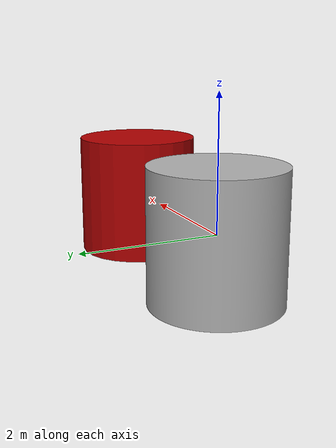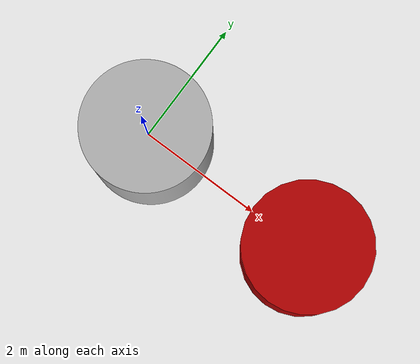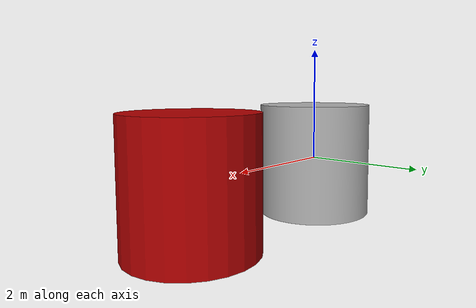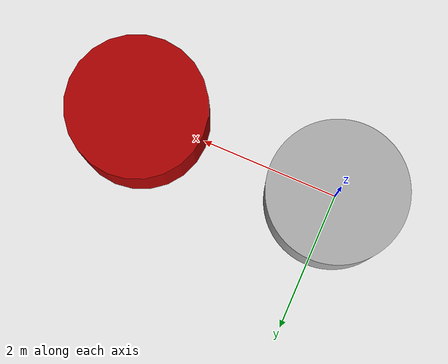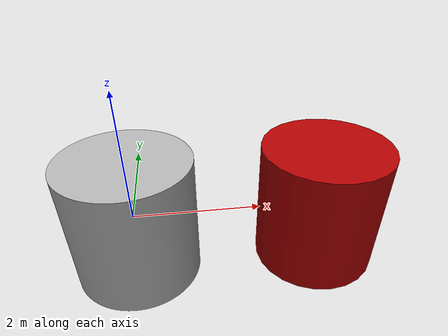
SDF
<?xml version="1.0" ?>
<sdf version="1.11">
  <model name="cylinder_dae">
    <link name="cylinder_dae">
      <pose>0 0 0 0 0 0</pose>
      <inertial auto="true" />
      <collision name="cylinder_collision">
        <density>1240.0</density>
        <auto_inertia_params>
          <gz:voxel_size>0.01</gz:voxel_size>
        </auto_inertia_params>
        <geometry>
          <mesh>
            <uri>meshes/cylinder.dae</uri>
          </mesh>
        </geometry>
      </collision>
      <visual name="cylinder_visual">
        <pose>0 0 0 0 0 0</pose>
        <geometry>
          <mesh>
            <uri>meshes/cylinder.dae</uri>
          </mesh>
        </geometry>
        <material>
          <diffuse>0.7 0.7 0.7 1.0</diffuse>
          <ambient>0.7 0.7 0.7 1.0</ambient>
          <specular>0.7 0.7 0.7 1.0</specular>
        </material>
      </visual>
      <visual name="cylinder_visual_comparison">
        <pose>3 0 0 0 0 0</pose>
        <geometry>
          <cylinder>
            <radius>1</radius>
            <length>2.0</length>
          </cylinder>
        </geometry>
        <material>
          <diffuse>0.7 0.0 0.0 1.0</diffuse>
          <ambient>0.7 0.7 0.7 1.0</ambient>
          <specular>0.7 0.7 0.7 1.0</specular>
        </material>
      </visual>
    </link>
  </model>
</sdf>
